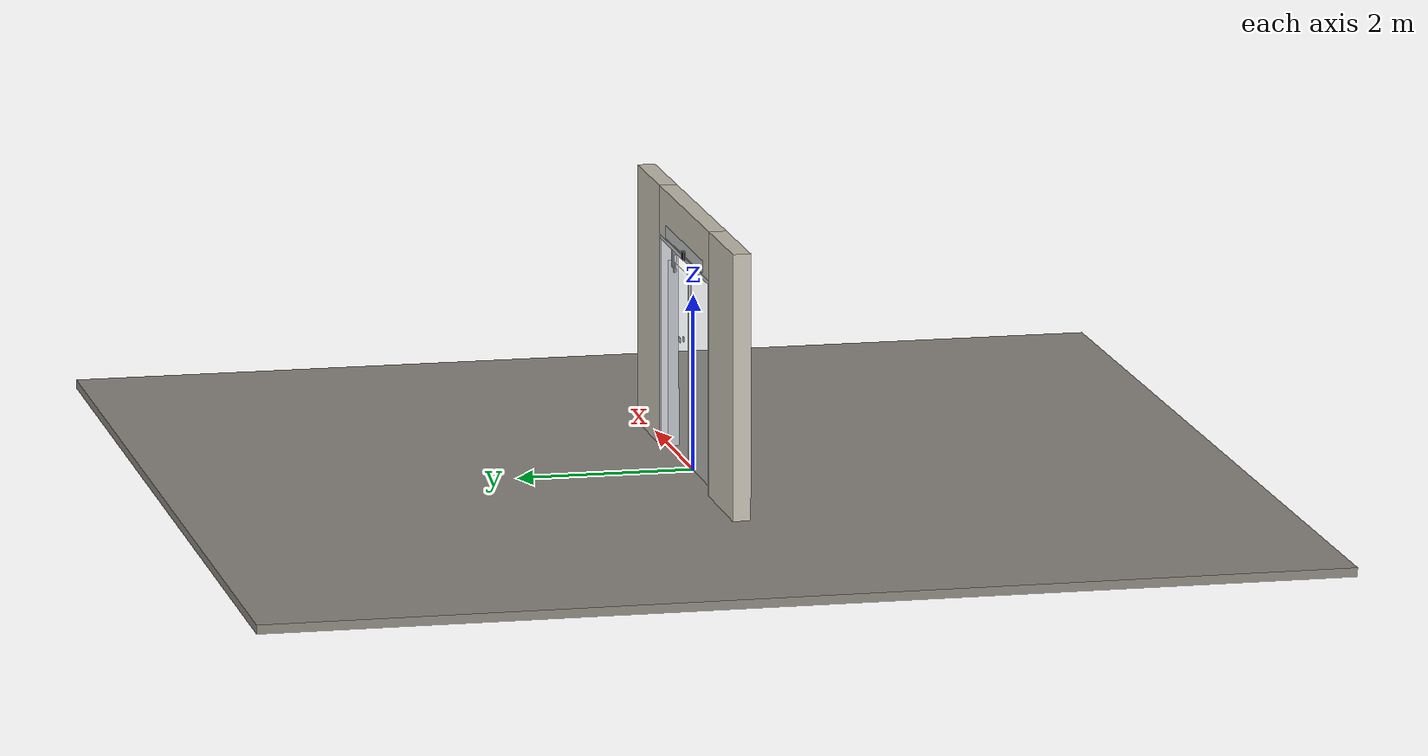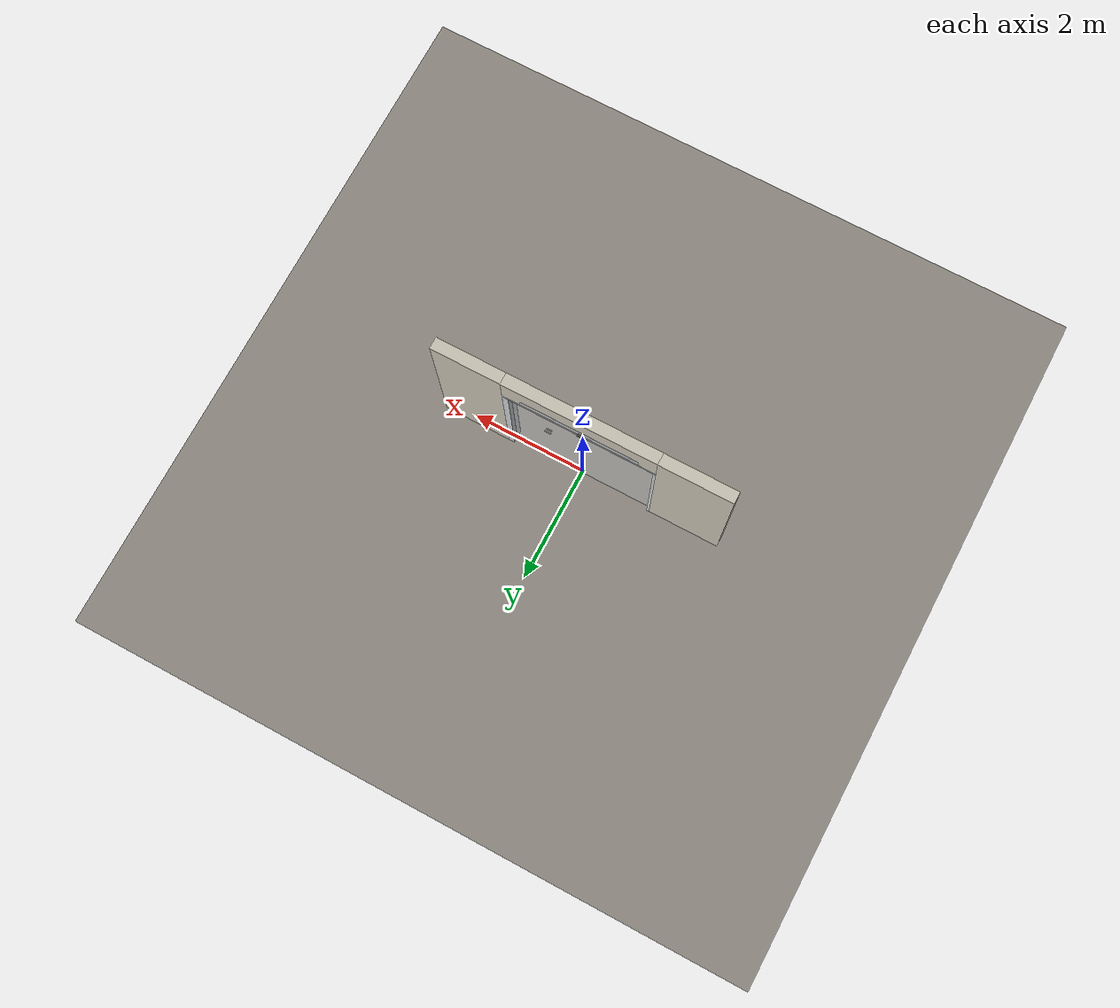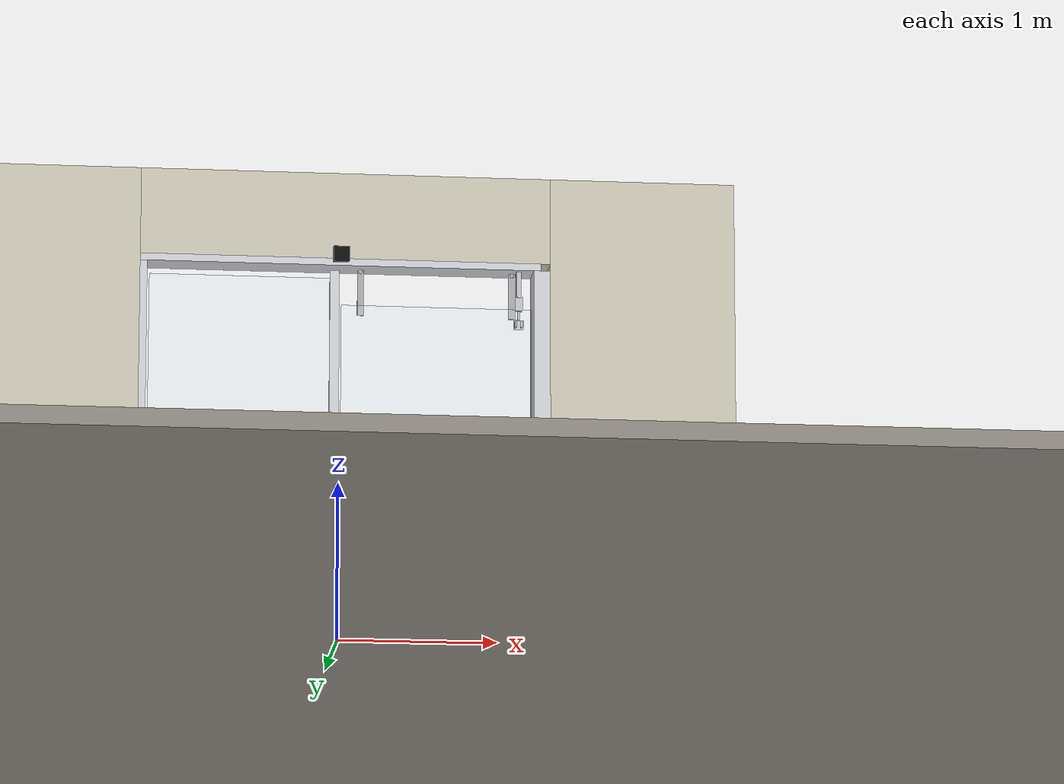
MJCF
<?xml version="1.0" ?>
<mujoco model="db0801_automatic_sliding_full">
  <compiler angle="radian" meshdir="../../hardware" texturedir="../../textures" autolimits="true" inertiafromgeom="false"/>
  <option timestep="0.002" integrator="implicitfast" cone="elliptic" impratio="10" noslip_iterations="3">
    <flag multiccd="enable"/>
  </option>
  <size memory="16M"/>
  <default>
    <geom condim="4" solref="0.005 1" solimp="0.95 0.99 0.001"/>
    <joint solreflimit="0.005 1" solimplimit="0.95 0.99 0.001"/>
    <tendon solreflimit="0.005 1"/>
    <equality solref="0.002 1"/>
  </default>
  <visual>
    <headlight ambient="0.4 0.4 0.4" diffuse="0.7 0.7 0.7" specular="0.2 0.2 0.2"/>
    <quality shadowsize="4096"/>
    <map znear="0.01" zfar="60"/>
  </visual>
  <asset>
    <material name="mat_floor" rgba="0.55 0.53 0.5 1" specular="0.2" shininess="0.15" reflectance="0"/>
    <material name="mat_wall" rgba="0.78 0.76 0.7 1" specular="0.2" shininess="0.1" reflectance="0"/>
    <material name="mat_frame" rgba="0.8 0.81 0.83 1" specular="0.8" shininess="0.6" reflectance="0.4"/>
    <material name="mat_track" rgba="0.8 0.81 0.83 1" specular="0.8" shininess="0.6" reflectance="0.4"/>
    <material name="mat_fixed_glass" rgba="0.85 0.92 0.95 0.25" specular="0.2" shininess="0.95" reflectance="0.1"/>
    <material name="mat_leaf" rgba="0.85 0.92 0.95 0.25" specular="0.2" shininess="0.95" reflectance="0.1"/>
    <material name="mat_glass_leaf" rgba="0.85 0.92 0.95 0.25" specular="0.2" shininess="0.95" reflectance="0.1"/>
    <material name="mat_patch" rgba="0.75 0.76 0.77 1" specular="0.8" shininess="0.65" reflectance="0.4"/>
    <material name="mat_roller" rgba="0.65 0.66 0.68 1" specular="0.74" shininess="0.5" reflectance="0.36"/>
    <material name="mat_ebolt" rgba="0.75 0.76 0.77 1" specular="0.8" shininess="0.65" reflectance="0.4"/>
    <material name="mat_hook" rgba="0.75 0.76 0.77 1" specular="0.8" shininess="0.65" reflectance="0.4"/>
    <material name="mat_sign" rgba="0.75 0.76 0.77 1" specular="0.8" shininess="0.65" reflectance="0.4"/>
    <material name="mat_wallreader" rgba="0.05 0.05 0.05 1" specular="0.38" shininess="0.3" reflectance="0.12"/>
    <texture name="skybox" type="skybox" builtin="gradient" rgb1="0.6 0.7 0.85" rgb2="0.9 0.92 0.95" width="256" height="256"/>
  </asset>
  <worldbody>
    <light name="sun" pos="1.5 -2.5 4" dir="-0.3 0.5 -0.8" directional="true" diffuse="0.8 0.8 0.8" specular="0.3 0.3 0.3" castshadow="true"/>
    <light name="fill" pos="-1.5 2.5 3" dir="0.3 -0.5 -0.7" directional="true" diffuse="0.35 0.35 0.4" castshadow="false"/>
    <camera name="robot_view" pos="0 -2.9125 2.0075" xyaxes="1 0 0 0 0.26963 0.962964" fovy="52"/>
    <camera name="far_view" pos="0 2.9125 2.0075" xyaxes="-1 0 0 0 -0.26963 0.962964" fovy="52"/>
    <camera name="iso" pos="2.2135 -2.4465 2.4735" xyaxes="0.741536 0.670913 0 -0.242917 0.268487 0.932151" fovy="46"/>
    <camera name="detail_handle" pos="0.48 -0.8 1.28" xyaxes="0.97561 0.219512 0 -0.070934 0.315262 0.94635" fovy="38"/>
    <geom name="floor" type="box" size="6 6 0.05" pos="0 0 -0.05" material="mat_floor" group="0" contype="1" conaffinity="1" friction="0.8 0.005 0.0001" density="2400"/>
    <geom name="wall_left" type="box" size="0.6175 0.1 1.492" pos="-1.8825 0 1.492" material="mat_wall" group="0" contype="1" conaffinity="1" friction="0.6 0.005 0.0001" density="800"/>
    <geom name="wall_right" type="box" size="0.5875 0.1 1.492" pos="1.9125 0 1.492" material="mat_wall" group="0" contype="1" conaffinity="1" friction="0.6 0.005 0.0001" density="800"/>
    <geom name="wall_header" type="box" size="1.295 0.1 0.2775" pos="0.03 0 2.7065" material="mat_wall" group="0" contype="1" conaffinity="1" friction="0.6 0.005 0.0001" density="800"/>
    <geom name="jamb_l" type="box" size="0.0225 0.1 1.192" pos="-1.2425 0 1.192" material="mat_frame" group="0" contype="1" conaffinity="1" friction="0.6 0.005 0.0001" density="300"/>
    <geom name="jamb_head" type="box" size="1.265 0.1 0.0225" pos="0 0 2.4065" material="mat_frame" group="0" contype="1" conaffinity="1" friction="0.6 0.005 0.0001" density="300"/>
    <geom name="fixed_panel_glass" type="box" size="0.59 0.003 1.142" pos="-0.61 0.04 1.192" material="mat_fixed_glass" group="0" contype="1" conaffinity="1" friction="0.6 0.005 0.0001" density="2500"/>
    <geom name="fixed_panel_stile" type="box" size="0.03 0.012 1.192" pos="-0.03 0.0475 1.192" material="mat_frame" group="0" contype="1" conaffinity="1" friction="0.6 0.005 0.0001" density="1400"/>
    <geom name="track_header" type="box" size="1.24 0.09 0.09" pos="0.02 0 2.519" material="mat_track" group="0" contype="1" conaffinity="1" friction="0.6 0.005 0.0001" density="2700"/>
    <geom name="leaf_electric_bolt_housing" type="box" size="0.022 0.014 0.045" pos="1.13 -0.0405 2.176" material="mat_ebolt" group="1" contype="0" conaffinity="0" density="7900"/>
    <geom name="leaf_electric_bolt_hanger" type="box" size="0.016 0.006 0.0835" pos="1.13 -0.0525 2.3005" material="mat_ebolt" group="1" contype="0" conaffinity="0" density="7900"/>
    <geom name="jamb_latch_0" type="box" size="0.0525 0.1 1.192" pos="1.2725 0 1.192" material="mat_frame" group="0" contype="1" conaffinity="1" friction="0.6 0.005 0.0001" density="300"/>
    <geom name="wave_sensor_n" type="box" size="0.05 0.012 0.05" pos="0 -0.112 2.454" material="mat_wallreader" group="0" contype="1" conaffinity="1" friction="0.6 0.005 0.0001" density="1000"/>
    <geom name="wave_sensor_n_pad" type="box" size="0.04 0.0055 0.04" pos="0 -0.095 2.454" material="mat_wallreader" group="1" contype="0" conaffinity="0" density="7850"/>
    <geom name="wave_sensor_p" type="box" size="0.05 0.012 0.05" pos="0 0.112 2.454" material="mat_wallreader" group="0" contype="1" conaffinity="1" friction="0.6 0.005 0.0001" density="1000"/>
    <geom name="wave_sensor_p_pad" type="box" size="0.04 0.0055 0.04" pos="0 0.095 2.454" material="mat_wallreader" group="1" contype="0" conaffinity="0" density="7850"/>
    <geom name="track_header_bracket" type="box" size="0.992 0.0055 0.072" pos="0.02 0.095 2.519" material="mat_hook" group="1" contype="0" conaffinity="0" density="7850"/>
    <site name="approach_point" pos="0 -1.5 0" quat="1 0 0 0" size="0.05" rgba="0.2 0.9 0.2 0.5" group="4"/>
    <site name="goal_point" pos="0 1.5 0" quat="1 0 0 0" size="0.05" rgba="0.2 0.9 0.2 0.5" group="4"/>
    <site name="door_plane_center" pos="0 0 1.192" quat="1 0 0 0" size="0.02" rgba="0.2 0.9 0.2 0.5" group="4"/>
    <body name="leaf" pos="0.61 0 0">
      <inertial pos="0.00282 -0.000175 1.123237" mass="89.447232" quat="0.502176 -0.502341 -0.497453 -0.49801" diaginertia="11.101587157 36.812566647 47.883746475"/>
      <joint name="leaf_slide" type="slide" axis="-1 0 0" limited="true" range="0 1.18" damping="6.47988" frictionloss="21.087655" armature="0.5"/>
      <geom name="leaf_glass" type="box" size="0.6 0.0225 1.067" pos="0 0 1.079" material="mat_glass_leaf" group="0" contype="1" conaffinity="1" friction="0.4 0.005 0.0001" density="1"/>
      <geom name="leaf_carrier_0" type="box" size="0.02 0.005 0.147" pos="-0.48 0 2.233" material="mat_roller" group="1" contype="0" conaffinity="0" density="7850"/>
      <geom name="leaf_carrier_wheel_0" type="cylinder" size="0.014 0.006" pos="-0.48 0 2.37" quat="0.707107 -0.707107 0 0" material="mat_roller" group="1" contype="0" conaffinity="0" density="7850"/>
      <geom name="leaf_carrier_1" type="box" size="0.02 0.005 0.147" pos="0.48 0 2.233" material="mat_roller" group="1" contype="0" conaffinity="0" density="7850"/>
      <geom name="leaf_carrier_wheel_1" type="cylinder" size="0.014 0.006" pos="0.48 0 2.37" quat="0.707107 -0.707107 0 0" material="mat_roller" group="1" contype="0" conaffinity="0" density="7850"/>
      <geom name="leaf_ebolt_keeper_n" type="box" size="0.006 0.014 0.02" pos="0.502 -0.0365 2.046" material="mat_ebolt" group="0" contype="1" conaffinity="1" friction="0.6 0.005 0.0001" density="7900"/>
      <geom name="leaf_ebolt_keeper_p" type="box" size="0.006 0.014 0.02" pos="0.538 -0.0365 2.046" material="mat_ebolt" group="0" contype="1" conaffinity="1" friction="0.6 0.005 0.0001" density="7900"/>
      <geom name="leaf_ebolt_keeper_base" type="box" size="0.03 0.002 0.03" pos="0.52 -0.0245 2.046" material="mat_ebolt" group="1" contype="0" conaffinity="0" density="7900"/>
      <geom name="sign_push" type="box" size="0.06 0.001 0.03" pos="0 -0.0235 1.362" material="mat_sign" group="2" contype="0" conaffinity="0" density="7900"/>
      <geom name="sign_pull" type="box" size="0.06 0.001 0.03" pos="0 0.0235 1.362" material="mat_sign" group="2" contype="0" conaffinity="0" density="7900"/>
      <site name="leaf_edge_mid" pos="0.6 0 1.079" quat="1 0 0 0" size="0.02" rgba="0.2 0.9 0.2 0.5" group="4"/>
    </body>
    <body name="leaf_electric_bolt" pos="1.13 -0.0365 2.081">
      <inertial pos="0 0 0.04" mass="0.150368" quat="0.707107 0 0.707107 0" diaginertia="0.000004703 0.000115179 0.000115179"/>
      <joint name="leaf_electric_bolt_slide" type="slide" axis="0 0 1" limited="true" range="0 0.04" damping="5" frictionloss="2" armature="0.1" ref="0.04"/>
      <geom name="leaf_electric_bolt_geom" type="capsule" size="0.008 0.042" pos="0 0 0.04" material="mat_ebolt" group="0" contype="1" conaffinity="1" friction="0.4 0.005 0.0001" density="7900"/>
    </body>
  </worldbody>
  <actuator>
    <position name="leaf_drive" joint="leaf_slide" kp="400" kv="60" forcerange="-150 150" ctrlrange="0 1.18"/>
  </actuator>
  <sensor>
    <jointpos name="leaf_slide_pos" joint="leaf_slide"/>
    <jointvel name="leaf_slide_vel" joint="leaf_slide"/>
    <jointpos name="leaf_electric_bolt_slide_pos" joint="leaf_electric_bolt_slide"/>
    <jointvel name="leaf_electric_bolt_slide_vel" joint="leaf_electric_bolt_slide"/>
  </sensor>
</mujoco>
